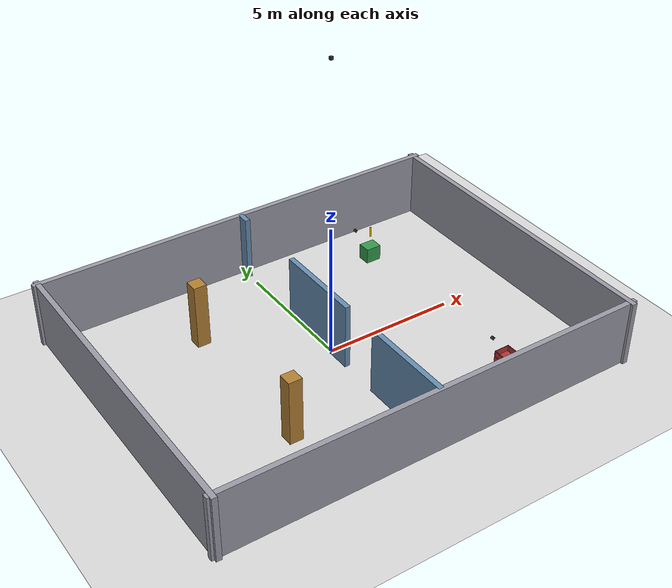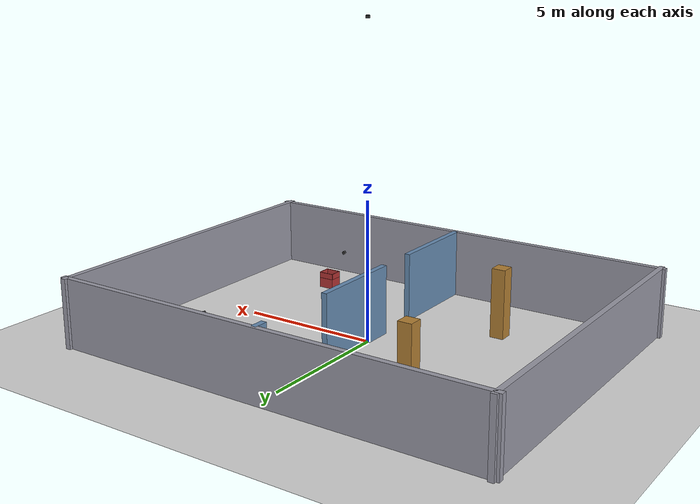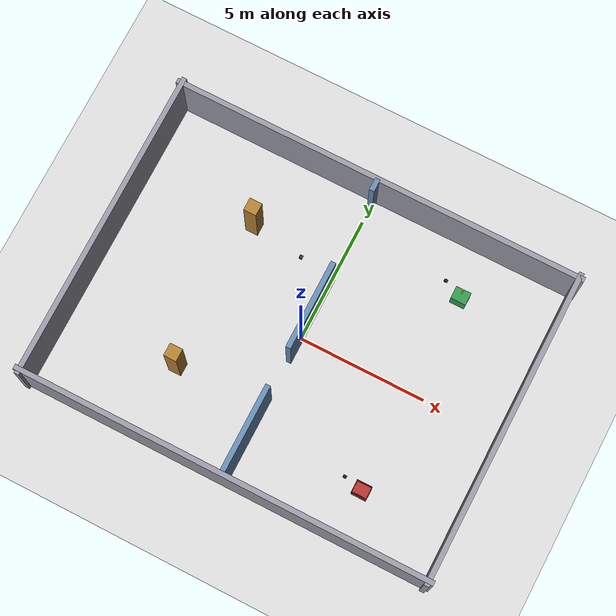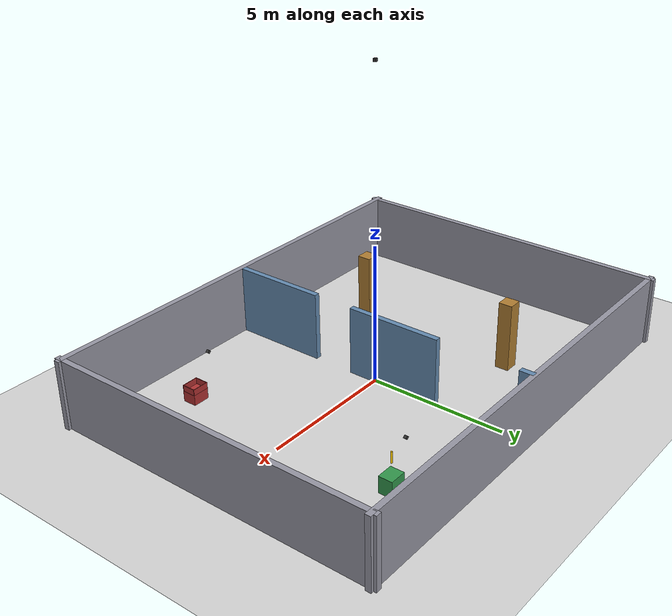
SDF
<?xml version="1.0" ?>
<sdf version="1.8">
  <world name="simple_maze">

    <plugin filename="gz-sim-physics-system"
            name="gz::sim::systems::Physics"/>
    <plugin filename="gz-sim-user-commands-system"
            name="gz::sim::systems::UserCommands"/>
    <plugin filename="gz-sim-scene-broadcaster-system"
            name="gz::sim::systems::SceneBroadcaster"/>
    <plugin filename="gz-sim-sensors-system"
            name="gz::sim::systems::Sensors">
      <render_engine>ogre2</render_engine>
    </plugin>

    <light type="directional" name="sun">
      <cast_shadows>true</cast_shadows>
      <pose>0 0 10 0 0 0</pose>
      <diffuse>0.9 0.9 0.9 1</diffuse>
      <specular>0.2 0.2 0.2 1</specular>
      <attenuation>
        <range>1000</range>
        <constant>0.9</constant>
        <linear>0.01</linear>
        <quadratic>0.001</quadratic>
      </attenuation>
      <direction>-0.5 0.1 -0.9</direction>
    </light>

    <!-- ============================================================
         GROUND PLANE
    ============================================================ -->
    <model name="ground_plane">
      <static>true</static>
      <link name="link">
        <collision name="collision">
          <geometry><plane><normal>0 0 1</normal><size>100 100</size></plane></geometry>
          <surface><friction><ode><mu>100</mu><mu2>50</mu2></ode></friction></surface>
        </collision>
        <visual name="visual">
          <geometry><plane><normal>0 0 1</normal><size>100 100</size></plane></geometry>
          <material>
            <ambient>0.85 0.85 0.85 1</ambient>
            <diffuse>0.85 0.85 0.85 1</diffuse>
          </material>
        </visual>
      </link>
    </model>

    <!-- North wall  Y = +6 -->
    <model name="wall_north">
      <static>true</static>
      <pose>0.0 6.0 1.25 0 0 0</pose>
      <link name="link">
        <collision name="col"><geometry><box><size>16.4 0.2 2.5</size></box></geometry></collision>
        <visual name="vis">
          <geometry><box><size>16.4 0.2 2.5</size></box></geometry>
          <material><ambient>0.6 0.6 0.65 1</ambient><diffuse>0.6 0.6 0.65 1</diffuse></material>
        </visual>
      </link>
    </model>

    <!-- South wall  Y = -6 -->
    <model name="wall_south">
      <static>true</static>
      <pose>0.0 -6.0 1.25 0 0 0</pose>
      <link name="link">
        <collision name="col"><geometry><box><size>16.4 0.2 2.5</size></box></geometry></collision>
        <visual name="vis">
          <geometry><box><size>16.4 0.2 2.5</size></box></geometry>
          <material><ambient>0.6 0.6 0.65 1</ambient><diffuse>0.6 0.6 0.65 1</diffuse></material>
        </visual>
      </link>
    </model>

    <!-- East wall  X = +8 -->
    <model name="wall_east">
      <static>true</static>
      <pose>8.0 0.0 1.25 0 0 0</pose>
      <link name="link">
        <collision name="col"><geometry><box><size>0.2 12.4 2.5</size></box></geometry></collision>
        <visual name="vis">
          <geometry><box><size>0.2 12.4 2.5</size></box></geometry>
          <material><ambient>0.6 0.6 0.65 1</ambient><diffuse>0.6 0.6 0.65 1</diffuse></material>
        </visual>
      </link>
    </model>

    <!-- West wall  X = -8 -->
    <model name="wall_west">
      <static>true</static>
      <pose>-8.0 0.0 1.25 0 0 0</pose>
      <link name="link">
        <collision name="col"><geometry><box><size>0.2 12.4 2.5</size></box></geometry></collision>
        <visual name="vis">
          <geometry><box><size>0.2 12.4 2.5</size></box></geometry>
          <material><ambient>0.6 0.6 0.65 1</ambient><diffuse>0.6 0.6 0.65 1</diffuse></material>
        </visual>
      </link>
    </model>

    <model name="divider_south">
      <static>true</static>
      <pose>0.0 -4.25 1.25 0 0 0</pose>
      <link name="link">
        <collision name="col"><geometry><box><size>0.2 3.5 2.5</size></box></geometry></collision>
        <visual name="vis">
          <geometry><box><size>0.2 3.5 2.5</size></box></geometry>
          <material><ambient>0.4 0.55 0.7 1</ambient><diffuse>0.4 0.55 0.7 1</diffuse></material>
        </visual>
      </link>
    </model>

    <!-- NARROW PASSAGE label: Y ∈ [-2.5, -1.0], width = 1.5 m -->

    <model name="divider_middle">
      <static>true</static>
      <pose>0.0 0.75 1.25 0 0 0</pose>
      <link name="link">
        <collision name="col"><geometry><box><size>0.2 3.5 2.5</size></box></geometry></collision>
        <visual name="vis">
          <geometry><box><size>0.2 3.5 2.5</size></box></geometry>
          <material><ambient>0.4 0.55 0.7 1</ambient><diffuse>0.4 0.55 0.7 1</diffuse></material>
        </visual>
      </link>
    </model>

    <!-- WIDE DOOR label: Y ∈ [2.5, 5.5], width = 3.0 m -->

    <model name="divider_north">
      <static>true</static>
      <pose>0.0 5.75 1.25 0 0 0</pose>
      <link name="link">
        <collision name="col"><geometry><box><size>0.2 0.5 2.5</size></box></geometry></collision>
        <visual name="vis">
          <geometry><box><size>0.2 0.5 2.5</size></box></geometry>
          <material><ambient>0.4 0.55 0.7 1</ambient><diffuse>0.4 0.55 0.7 1</diffuse></material>
        </visual>
      </link>
    </model>

    <model name="pillar_a">
      <static>true</static>
      <pose>-3.5 3.0 1.25 0 0 0</pose>
      <link name="link">
        <collision name="col"><geometry><box><size>0.5 0.5 2.5</size></box></geometry></collision>
        <visual name="vis">
          <geometry><box><size>0.5 0.5 2.5</size></box></geometry>
          <material><ambient>0.7 0.5 0.2 1</ambient><diffuse>0.7 0.5 0.2 1</diffuse></material>
        </visual>
      </link>
    </model>

    <model name="pillar_b">
      <static>true</static>
      <pose>-3.5 -3.0 1.25 0 0 0</pose>
      <link name="link">
        <collision name="col"><geometry><box><size>0.5 0.5 2.5</size></box></geometry></collision>
        <visual name="vis">
          <geometry><box><size>0.5 0.5 2.5</size></box></geometry>
          <material><ambient>0.7 0.5 0.2 1</ambient><diffuse>0.7 0.5 0.2 1</diffuse></material>
        </visual>
      </link>
    </model>

    <!-- Pick table: accessible via WIDE door (Y center ≈ 4.0) -->
    <model name="pick_table">
      <static>true</static>
      <pose>4.5 4.0 0.3 0 0 0</pose>
      <link name="link">
        <collision name="col"><geometry><box><size>0.6 0.5 0.6</size></box></geometry></collision>
        <visual name="vis">
          <geometry><box><size>0.6 0.5 0.6</size></box></geometry>
          <material><ambient>0.2 0.6 0.3 1</ambient><diffuse>0.2 0.6 0.3 1</diffuse></material>
        </visual>
      </link>
    </model>

    <!-- Place table: top-open container accessible via NARROW passage -->
    <model name="place_table">
      <static>true</static>
      <pose>4.5 -4.0 0.3 0 0 0</pose>
      <link name="link">
        <!-- Bottom base block: height 0.38m (z_world from 0.0 to 0.38) -->
        <collision name="base_col">
          <pose>0 0 -0.11 0 0 0</pose>
          <geometry><box><size>0.6 0.5 0.38</size></box></geometry>
        </collision>
        <visual name="base_vis">
          <pose>0 0 -0.11 0 0 0</pose>
          <geometry><box><size>0.6 0.5 0.38</size></box></geometry>
          <material><ambient>0.7 0.2 0.2 1</ambient><diffuse>0.7 0.2 0.2 1</diffuse></material>
        </visual>

        <!-- North wall: thickness 0.02m (y_world from -3.77 to -3.75, height 0.22m) -->
        <collision name="north_wall_col">
          <pose>0 0.24 0.19 0 0 0</pose>
          <geometry><box><size>0.6 0.02 0.22</size></box></geometry>
        </collision>
        <visual name="north_wall_vis">
          <pose>0 0.24 0.19 0 0 0</pose>
          <geometry><box><size>0.6 0.02 0.22</size></box></geometry>
          <material><ambient>0.7 0.2 0.2 1</ambient><diffuse>0.7 0.2 0.2 1</diffuse></material>
        </visual>

        <!-- South wall: thickness 0.02m (y_world from -4.25 to -4.23, height 0.22m) -->
        <collision name="south_wall_col">
          <pose>0 -0.24 0.19 0 0 0</pose>
          <geometry><box><size>0.6 0.02 0.22</size></box></geometry>
        </collision>
        <visual name="south_wall_vis">
          <pose>0 -0.24 0.19 0 0 0</pose>
          <geometry><box><size>0.6 0.02 0.22</size></box></geometry>
          <material><ambient>0.7 0.2 0.2 1</ambient><diffuse>0.7 0.2 0.2 1</diffuse></material>
        </visual>

        <!-- East wall: thickness 0.02m (x_world from 4.78 to 4.80, height 0.22m) -->
        <collision name="east_wall_col">
          <pose>0.29 0 0.19 0 0 0</pose>
          <geometry><box><size>0.02 0.46 0.22</size></box></geometry>
        </collision>
        <visual name="east_wall_vis">
          <pose>0.29 0 0.19 0 0 0</pose>
          <geometry><box><size>0.02 0.46 0.22</size></box></geometry>
          <material><ambient>0.7 0.2 0.2 1</ambient><diffuse>0.7 0.2 0.2 1</diffuse></material>
        </visual>

        <!-- West wall: thickness 0.02m (x_world from 4.20 to 4.22, height 0.22m) -->
        <collision name="west_wall_col">
          <pose>-0.29 0 0.19 0 0 0</pose>
          <geometry><box><size>0.02 0.46 0.22</size></box></geometry>
        </collision>
        <visual name="west_wall_vis">
          <pose>-0.29 0 0.19 0 0 0</pose>
          <geometry><box><size>0.02 0.46 0.22</size></box></geometry>
          <material><ambient>0.7 0.2 0.2 1</ambient><diffuse>0.7 0.2 0.2 1</diffuse></material>
        </visual>
      </link>
    </model>

    <!-- Workpiece on pick table - RAISED to 1.20m for arm reachability at extended reach -->
    <model name="workpiece">
      <static>false</static>
      <pose>4.5 4.0 1.20 0 0 0</pose>
      <link name="link">
        <inertial><mass>0.3</mass>
          <inertia><ixx>0.0002</ixx><ixy>0</ixy><ixz>0</ixz>
                   <iyy>0.0002</iyy><iyz>0</iyz><izz>0.0002</izz></inertia>
        </inertial>
        <collision name="col">
          <geometry><cylinder><radius>0.03</radius><length>0.4</length></cylinder></geometry>
        </collision>
        <visual name="vis">
          <geometry><cylinder><radius>0.03</radius><length>0.4</length></cylinder></geometry>
          <material><ambient>1.0 0.8 0.0 1</ambient><diffuse>1.0 0.8 0.0 1</diffuse></material>
        </visual>
      </link>
    </model>

    <!-- ============================================================
         MONITORING CAMERAS (Native Gazebo GUI Layout)
    ============================================================ -->

    <!-- Overview Camera -->
    <model name="overview_camera">
      <static>true</static>
      <pose>0.0 0.0 11.0 0 1.570796 0</pose>
      <link name="link">
        <visual name="visual">
          <geometry><box><size>0.1 0.1 0.1</size></box></geometry>
          <material>
            <ambient>0.2 0.2 0.2 1</ambient>
            <diffuse>0.2 0.2 0.2 1</diffuse>
          </material>
        </visual>
        <sensor name="camera" type="camera">
          <camera>
            <horizontal_fov>1.4</horizontal_fov>
            <image>
              <width>640</width>
              <height>424</height>
            </image>
            <clip>
              <near>0.1</near>
              <far>100</far>
            </clip>
          </camera>
          <always_on>1</always_on>
          <update_rate>15</update_rate>
          <visualize>true</visualize>
          <topic>overview_camera/image</topic>
        </sensor>
      </link>
    </model>

    <!-- Pick Table Camera -->
    <model name="pick_camera">
      <static>true</static>
      <pose>3.8 4.0 1.5 0 0.785 0</pose>
      <link name="link">
        <visual name="visual">
          <geometry><box><size>0.1 0.1 0.1</size></box></geometry>
          <material>
            <ambient>0.2 0.2 0.2 1</ambient>
            <diffuse>0.2 0.2 0.2 1</diffuse>
          </material>
        </visual>
        <sensor name="camera" type="camera">
          <camera>
            <horizontal_fov>1.4</horizontal_fov>
            <image>
              <width>640</width>
              <height>424</height>
            </image>
            <clip>
              <near>0.1</near>
              <far>100</far>
            </clip>
          </camera>
          <always_on>1</always_on>
          <update_rate>15</update_rate>
          <visualize>true</visualize>
          <topic>pick_camera/image</topic>
        </sensor>
      </link>
    </model>

    <!-- Place Table Camera -->
    <model name="place_camera">
      <static>true</static>
      <pose>3.8 -4.0 1.5 0 0.785 0</pose>
      <link name="link">
        <visual name="visual">
          <geometry><box><size>0.1 0.1 0.1</size></box></geometry>
          <material>
            <ambient>0.2 0.2 0.2 1</ambient>
            <diffuse>0.2 0.2 0.2 1</diffuse>
          </material>
        </visual>
        <sensor name="camera" type="camera">
          <camera>
            <horizontal_fov>1.4</horizontal_fov>
            <image>
              <width>640</width>
              <height>424</height>
            </image>
            <clip>
              <near>0.1</near>
              <far>100</far>
            </clip>
          </camera>
          <always_on>1</always_on>
          <update_rate>15</update_rate>
          <visualize>true</visualize>
          <topic>place_camera/image</topic>
        </sensor>
      </link>
    </model>

  </world>
</sdf>
